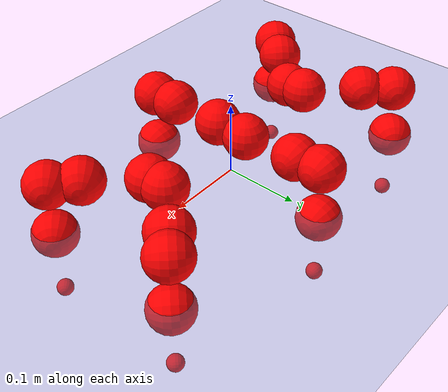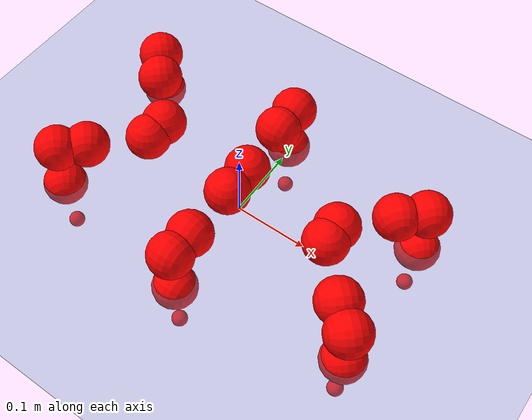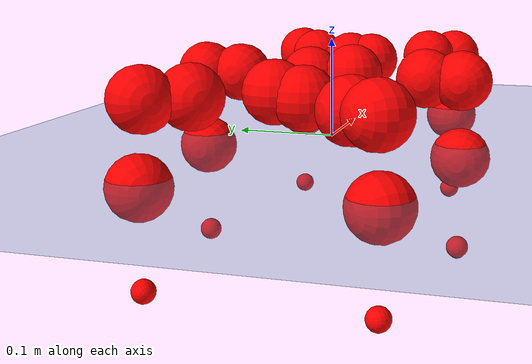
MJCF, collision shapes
<mujoco model="Golem">
  <compiler angle="radian" assetdir="assets" balanceinertia="true" inertiafromgeom="false"/>

  <option timestep="0.005" density="1.2" viscosity="2e-05"/>

  <size nkey="1"/>

  <visual>
    <quality shadowsize="8192"/>
    <map shadowclip="0.5"/>
  </visual>

  <default>
    <default class="/">
      <joint armature="0.01" damping="0.01" frictionloss="0.01"/>
      <geom contype="0" conaffinity="0" group="1" solref="-1000 -80"/>
      <site size="0.01 0.005 0.005" group="5"/>
      <general forcelimited="true" biastype="affine" gainprm="25" biasprm="0 -25 -0.5"/>
      <default class="visual">
        <geom type="mesh" group="2"/>
      </default>
      <default class="collision">
        <geom group="3"/>
      </default>
      <default class="foot">
        <geom size="0.01 0 0" condim="6" group="4" priority="1" solimp="0.015 1 0.01"/>
      </default>
      <default class="reward_collision_sphere">
        <geom group="5" rgba="1 0 0 1"/>
      </default>
    </default>
  </default>

  <asset>
    <texture type="skybox" colorspace="auto" name="//unnamed_texture_0" builtin="gradient" rgb1="0.95 0.95 0.95" rgb2="0.95 0.95 0.95" width="100" height="600"/>
    <texture type="2d" colorspace="auto" name="texplane" builtin="checker" rgb1="0.345 0.575 0.748" rgb2="0.345 0.575 0.748" markrgb="1 1 1" width="512" height="512"/>
    <material name="MatPlane" class="/" texture="texplane" texuniform="true" texrepeat="2 2" specular="0.9"/>
    <mesh name="body" class="/" file="body.stl" scale="0.001 0.001 0.001"/>
    <mesh name="coxa" class="/" file="coxa.stl" scale="0.001 0.001 0.001"/>
    <mesh name="femur" class="/" file="femur.stl" scale="0.001 0.001 0.001"/>
    <mesh name="tibia" class="/" file="tibia.stl" scale="0.001 0.001 0.001"/>
    <mesh name="tarsus" class="/" file="tarsus.stl" scale="0.001 0.001 0.001"/>
  </asset>

  <worldbody>
    <geom name="floor" class="/" size="100 100 0.125" type="plane" group="0" material="MatPlane"/>
    <light name="toplight_shadow" class="/" pos="0 0 5" dir="0.0990148 0.0990148 -0.990148" type="directional" ambient="0.04 0.04 0.04" diffuse="0.55 0.55 0.55" specular="0.12 0.12 0.12"/>
    <light name="toplight_fill" class="/" pos="0 0 5" dir="0.0990148 0.0990148 -0.990148" type="directional" castshadow="false" ambient="0.04 0.04 0.04" diffuse="0.3 0.3 0.3" specular="0.08 0.08 0.08"/>
    <body name="trunk" pos="0.000137479 -6.12944e-05 7.33564e-05" quat="1 0.000450683 0.000704755 1.22001e-05">
      <inertial pos="0.00137157 -0.000592621 -0.00226681" quat="1 0.000190795 0.00013352 -7.1225e-05" mass="1.56221" diaginertia="0.0049648 6.4158e-05 0.00985855"/>
      <joint name="//unnamed_joint_0" type="free"/>
      <geom name="//unnamed_geom_1" class="/" pos="0 0 0.0638734" quat="1 0 0 0" type="mesh" rgba="0.9 0.9 0.9 1" mesh="body"/>
      <site name="imu" class="/" pos="0.123495 -0.0130146 0.102522" size="0.00745501"/>
      <camera name="track" class="/" pos="0 -0.734827 0" quat="0.707107 0.707107 0 0" mode="trackcom"/>
      <camera name="ego_camera" class="/" pos="0.113239 0 0.0998021" quat="-0.5 -0.5 0.5 0.5"/>
      <body name="coxa_RR" pos="-0.155983 -0.0301123 0.0604757" quat="0.382152 6.88364e-06 0.00063353 -0.924099">
        <inertial pos="-0.000105903 0.000226456 0.00298617" quat="0.999904 -0.00735161 -0.00340272 0.0112097" mass="0.0860143" diaginertia="0.00518482 6.94411e-05 0.0102692"/>
        <joint name="coxa_joint_RR" class="/" pos="0 0 0" axis="-0.000967307 0.00506277 -0.999987" range="-3.19462 3.09213" armature="0.00750974" damping="0.012218" frictionloss="0.00843897"/>
        <geom name="//unnamed_geom_2" class="/" type="mesh" rgba="0.2 0.2 0.2 1" mesh="coxa"/>
        <geom name="//unnamed_geom_3" class="reward_collision_sphere" size="0.02982" pos="-0.0261321 0 0"/>
        <body name="femur_RR" pos="0.0532197 0.00115048 0.00103225" quat="0.500211 -0.500202 0.499863 0.499724">
          <inertial pos="0.000733489 -0.000311569 0.000241326" quat="0.999989 -0.00305615 -0.00283768 0.00213544" mass="0.0824745" diaginertia="0.0051659 6.91854e-05 0.00982759"/>
          <joint name="femur_joint_RR" class="/" pos="0 0 0" axis="0.0108183 -0.00397731 -0.999934" range="-3.09239 3.13129" armature="0.00646013" damping="0" frictionloss="0.00715237"/>
          <geom name="//unnamed_geom_4" class="/" type="mesh" rgba="0.9 0.9 0.9 1" mesh="femur"/>
          <geom name="//unnamed_geom_5" class="reward_collision_sphere" size="0.02982"/>
          <body name="tibia_RR" pos="-0.00222949 -0.0377728 0.00172145" quat="-0.000145822 0.999999 -0.000301836 -0.00134902">
            <inertial pos="0.00287398 0.00269475 -0.00121073" quat="0.999988 -0.000288313 0.00125212 -0.00475292" mass="0.0855295" diaginertia="0.00494337 6.6618e-05 0.00955484"/>
            <joint name="tibia_joint_RR" class="/" pos="0 0 0" axis="-0.000263706 -0.0113257 0.999936" stiffness="0.000149097" range="-3.09526 3.12915" armature="0.00650299" damping="0" frictionloss="0.00775868"/>
            <geom name="//unnamed_geom_6" class="/" type="mesh" rgba="0.2 0.2 0.2 1" mesh="tibia"/>
            <geom name="//unnamed_geom_7" class="reward_collision_sphere" size="0.02982"/>
            <body name="tarsus_RR" pos="0.0740562 0.0019866 -0.00234371" quat="1 -0.000461555 1.04205e-05 0.000616657">
              <inertial pos="0.0499578 0.00116769 -0.000903869" quat="0.499968 0.500333 0.499822 0.499876" mass="0.0867478" diaginertia="0.00530944 6.68103e-05 0.0105555"/>
              <joint name="tarsus_joint_RR" class="/" pos="0 0 0" axis="0.0121509 0.00509324 0.999913" stiffness="0.00374633" range="-3.18186 3.15419" armature="0.00741808" damping="0" frictionloss="0.00724213"/>
              <geom name="//unnamed_geom_8" class="/" type="mesh" rgba="0.9 0.9 0.9 1" mesh="tarsus"/>
              <geom name="foot_1" class="foot" size="0.0076307" pos="0.0975597 0 0" quat="0 -0.707107 0 0.707107"/>
              <geom name="//unnamed_geom_10" class="reward_collision_sphere" size="0.02982"/>
              <geom name="//unnamed_geom_11" class="reward_collision_sphere" size="0.0111825" pos="0.0936398 0 0"/>
              <site name="foot_1" class="foot" pos="0.0975597 0 0" quat="0 -0.707107 0 0.707107" size="0.00745501"/>
            </body>
          </body>
        </body>
      </body>
      <body name="coxa_RM" pos="-0.0018765 -0.0485371 0.0655211" quat="0.707765 0.000795705 -5.86421e-06 -0.706448">
        <inertial pos="0.00237272 -0.00240411 0.00227441" quat="0.999988 -0.000415079 0.000324638 -0.00489379" mass="0.0797203" diaginertia="0.00484964 6.70078e-05 0.009841"/>
        <joint name="coxa_joint_RM" class="/" pos="0 0 0" axis="-0.00792856 0.00988236 -0.99992" range="-3.14052 3.19262" armature="0.00811663" damping="0.00198893" frictionloss="0.00640584"/>
        <geom name="//unnamed_geom_12" class="/" type="mesh" rgba="0.2 0.2 0.2 1" mesh="coxa"/>
        <geom name="//unnamed_geom_13" class="reward_collision_sphere" size="0.02982" pos="-0.0261321 0 0"/>
        <body name="femur_RM" pos="0.0486758 -0.000584832 -0.00195484" quat="0.499861 -0.500031 0.500048 0.50006">
          <inertial pos="0.00275192 -5.87565e-05 -0.000640541" quat="1 -0.000205142 -9.16265e-05 -5.52288e-05" mass="0.0878819" diaginertia="0.00505751 6.77155e-05 0.0100063"/>
          <joint name="femur_joint_RM" class="/" pos="0 0 0" axis="0.00538861 0.00314922 -0.999981" range="-3.18568 3.14338" armature="0.00768217" damping="0.0201937" frictionloss="0.00849626"/>
          <geom name="//unnamed_geom_14" class="/" type="mesh" rgba="0.9 0.9 0.9 1" mesh="femur"/>
          <geom name="//unnamed_geom_15" class="reward_collision_sphere" size="0.02982"/>
          <body name="tibia_RM" pos="0.000804456 -0.0362415 -0.000971236" quat="-6.77193e-05 1 0.000474665 -0.000305465">
            <inertial pos="0.00164889 -0.00297569 -0.00254509" quat="0.999913 -0.00696891 0.0110677 0.00182413" mass="0.0835555" diaginertia="0.00516104 6.62695e-05 0.0102262"/>
            <joint name="tibia_joint_RM" class="/" pos="0 0 0" axis="0.00159798 -0.000406674 0.999999" range="-3.15008 3.10233" armature="0.00826644" damping="0.0157136" frictionloss="0.00815198"/>
            <geom name="//unnamed_geom_16" class="/" type="mesh" rgba="0.2 0.2 0.2 1" mesh="tibia"/>
            <geom name="//unnamed_geom_17" class="reward_collision_sphere" size="0.02982"/>
            <body name="tarsus_RM" pos="0.0777036 0.000433271 -0.000884902" quat="1 0.000171649 3.27756e-05 0.0002149">
              <inertial pos="0.055391 -0.00072069 0.00100873" quat="0.510047 0.50026 0.490286 0.499211" mass="0.0824356" diaginertia="0.00515325 6.84749e-05 0.00955812"/>
              <joint name="tarsus_joint_RM" class="/" pos="0 0 0" axis="0.000976869 -0.000608186 0.999999" range="-3.09571 3.18429" armature="0.00812097" damping="0.00878896" frictionloss="0.00721569"/>
              <geom name="//unnamed_geom_18" class="/" type="mesh" rgba="0.9 0.9 0.9 1" mesh="tarsus"/>
              <geom name="foot_2" class="foot" size="0.00813269" pos="0.0975597 0 0" quat="0 -0.707107 0 0.707107"/>
              <geom name="//unnamed_geom_20" class="reward_collision_sphere" size="0.02982"/>
              <geom name="//unnamed_geom_21" class="reward_collision_sphere" size="0.0111825" pos="0.0936398 0 0"/>
              <site name="foot_2" class="foot" pos="0.0975597 0 0" quat="0 -0.707107 0 0.707107" size="0.00745501"/>
            </body>
          </body>
        </body>
      </body>
      <body name="coxa_RF" pos="0.152951 -0.0291902 0.0641739" quat="0.923837 -6.06288e-05 -1.25614e-05 -0.382786">
        <inertial pos="-0.00264777 -0.00152738 0.00316394" quat="0.999901 0.0109703 -0.00882204 -0.000548241" mass="0.0824887" diaginertia="0.0052131 6.69189e-05 0.00995992"/>
        <joint name="coxa_joint_RF" class="/" pos="0 0 0" axis="-0.0021032 -0.00431127 -0.999988" range="-3.17665 3.18533" armature="0.00645154" damping="0.012253" frictionloss="0.00783398"/>
        <geom name="//unnamed_geom_22" class="/" type="mesh" rgba="0.2 0.2 0.2 1" mesh="coxa"/>
        <geom name="//unnamed_geom_23" class="reward_collision_sphere" size="0.02982" pos="-0.0261321 0 0"/>
        <body name="femur_RF" pos="0.0529983 -0.00245303 0.000567493" quat="0.500307 -0.499697 0.50078 0.499214">
          <inertial pos="-0.000625284 -0.00295081 0.00240604" quat="0.99994 -0.00756504 0.00633283 0.0046753" mass="0.0821829" diaginertia="0.00481291 6.47358e-05 0.00986753"/>
          <joint name="femur_joint_RF" class="/" pos="0 0 0" axis="0.000900937 0.00586373 -0.999982" range="-3.08371 3.13817" armature="0.00734846" damping="0" frictionloss="0.00656068"/>
          <geom name="//unnamed_geom_24" class="/" type="mesh" rgba="0.9 0.9 0.9 1" mesh="femur"/>
          <geom name="//unnamed_geom_25" class="reward_collision_sphere" size="0.02982"/>
          <body name="tibia_RF" pos="0.00171178 -0.0394961 0.00225503" quat="0.00038747 0.999999 -0.00140169 -0.000162471">
            <inertial pos="0.000457015 0.00278386 -0.00153147" quat="0.999902 0.00321705 -0.00477238 0.0127247" mass="0.0840216" diaginertia="0.00509169 6.67018e-05 0.00986646"/>
            <joint name="tibia_joint_RF" class="/" pos="0 0 0" axis="0.00899197 0.00813575 0.999926" stiffness="0.00470632" range="-3.13507 3.12847" armature="0.00699954" damping="0.0010093" frictionloss="0.00741343"/>
            <geom name="//unnamed_geom_26" class="/" type="mesh" rgba="0.2 0.2 0.2 1" mesh="tibia"/>
            <geom name="//unnamed_geom_27" class="reward_collision_sphere" size="0.02982"/>
            <body name="tarsus_RF" pos="0.0744481 1.62475e-05 -0.00217875" quat="0.999999 -0.000539665 0.00104358 0.000394458">
              <inertial pos="0.0500813 0.000877562 0.0017819" quat="0.501602 0.488841 0.508385 0.500974" mass="0.0779567" diaginertia="0.00501726 6.57666e-05 0.00952758"/>
              <joint name="tarsus_joint_RF" class="/" pos="0 0 0" axis="-0.010039 0.00602409 0.999931" range="-3.09659 3.14262" armature="0.00737774" damping="0.00852098" frictionloss="0.00849498"/>
              <geom name="//unnamed_geom_28" class="/" type="mesh" rgba="0.9 0.9 0.9 1" mesh="tarsus"/>
              <geom name="foot_3" class="foot" size="0.00760442" pos="0.0975597 0 0" quat="0 -0.707107 0 0.707107"/>
              <geom name="//unnamed_geom_30" class="reward_collision_sphere" size="0.02982"/>
              <geom name="//unnamed_geom_31" class="reward_collision_sphere" size="0.0111825" pos="0.0936398 0 0"/>
              <site name="foot_3" class="foot" pos="0.0975597 0 0" quat="0 -0.707107 0 0.707107" size="0.00745501"/>
            </body>
          </body>
        </body>
      </body>
      <body name="coxa_LR" pos="-0.152461 0.0348491 0.0644086" quat="0.38199 -0.00100454 0.000400597 0.924166">
        <inertial pos="0.00270269 -0.000610326 -0.00243864" quat="0.999902 -0.0132109 -0.00248958 0.00387731" mass="0.0839327" diaginertia="0.00498226 6.77657e-05 0.010022"/>
        <joint name="coxa_joint_LR" class="/" pos="0 0 0" axis="0.00772217 0.00482716 -0.999959" range="-3.13253 3.1173" armature="0.00683005" damping="0.00290699" frictionloss="0.00734081"/>
        <geom name="//unnamed_geom_32" class="/" type="mesh" rgba="0.2 0.2 0.2 1" mesh="coxa"/>
        <geom name="//unnamed_geom_33" class="reward_collision_sphere" size="0.02982" pos="-0.0261321 0 0"/>
        <body name="femur_LR" pos="0.0519388 -0.00342795 0.0012358" quat="0.500806 -0.49983 0.500243 0.49912">
          <inertial pos="0.00122271 0.000486893 -0.00131419" quat="0.999999 0.000611721 -0.00064648 0.000939531" mass="0.0848067" diaginertia="0.00508528 6.80169e-05 0.0102969"/>
          <joint name="femur_joint_LR" class="/" pos="0 0 0" axis="-0.00299171 0.0023887 0.999993" range="-3.09556 3.17122" armature="0.00794268" damping="0" frictionloss="0.00814816"/>
          <geom name="//unnamed_geom_34" class="/" type="mesh" rgba="0.9 0.9 0.9 1" mesh="femur"/>
          <geom name="//unnamed_geom_35" class="reward_collision_sphere" size="0.02982"/>
          <body name="tibia_LR" pos="-0.000353018 -0.0424829 -0.00548317" quat="-0.000193986 1 -0.000239683 0.000355388">
            <inertial pos="0.00125503 -0.00312943 0.00325073" quat="0.999998 -0.00140949 0.000961637 -0.00041182" mass="0.0809109" diaginertia="0.00505553 6.97859e-05 0.00995149"/>
            <joint name="tibia_joint_LR" class="/" pos="0 0 0" axis="-0.00694668 -0.000176343 -0.999976" range="-3.12767 3.08779" armature="0.00665866" damping="0.0114413" frictionloss="0.00656446"/>
            <geom name="//unnamed_geom_36" class="/" type="mesh" rgba="0.2 0.2 0.2 1" mesh="tibia"/>
            <geom name="//unnamed_geom_37" class="reward_collision_sphere" size="0.02982"/>
            <body name="tarsus_LR" pos="0.075956 0.00430391 0.00085154" quat="1 2.08822e-05 -0.000100611 -2.57963e-05">
              <inertial pos="0.0515976 -0.0013503 0.000208553" quat="0.501139 0.498792 0.500639 0.499427" mass="0.0829885" diaginertia="0.00499296 6.54335e-05 0.00986982"/>
              <joint name="tarsus_joint_LR" class="/" pos="0 0 0" axis="0.0065441 0.001077 -0.999978" range="-3.09303 3.13959" armature="0.00761505" damping="0.00408091" frictionloss="0.00711547"/>
              <geom name="//unnamed_geom_38" class="/" type="mesh" rgba="0.9 0.9 0.9 1" mesh="tarsus"/>
              <geom name="foot_4" class="foot" size="0.00677185" pos="0.0975597 0 0" quat="0.707107 0 -0.707107 0"/>
              <geom name="//unnamed_geom_40" class="reward_collision_sphere" size="0.02982"/>
              <geom name="//unnamed_geom_41" class="reward_collision_sphere" size="0.0111825" pos="0.0936398 0 0"/>
              <site name="foot_4" class="foot" pos="0.0975597 0 0" quat="0.707107 0 -0.707107 0" size="0.00745501"/>
            </body>
          </body>
        </body>
      </body>
      <body name="coxa_LM" pos="-0.00345779 0.0476923 0.0622372" quat="0.706594 -0.000153782 0.000417681 0.707619">
        <inertial pos="-0.00118789 0.000160196 0.00295323" quat="0.999986 0.00131633 -0.000666222 0.00513485" mass="0.0832764" diaginertia="0.00523568 6.8143e-05 0.0103493"/>
        <joint name="coxa_joint_LM" class="/" pos="0 0 0" axis="-0.00290994 -0.000421812 -0.999996" stiffness="0.00599528" range="-3.19424 3.14656" armature="0.0063217" damping="0.00267465" frictionloss="0.00849291"/>
        <geom name="//unnamed_geom_42" class="/" type="mesh" rgba="0.2 0.2 0.2 1" mesh="coxa"/>
        <geom name="//unnamed_geom_43" class="reward_collision_sphere" size="0.02982" pos="-0.0261321 0 0"/>
        <body name="femur_LM" pos="0.0479966 0.00367711 0.00130869" quat="0.500082 -0.500275 0.499862 0.49978">
          <inertial pos="-0.000617666 -0.00293843 -0.000371986" quat="0.999914 -0.00434999 0.0111357 0.00547997" mass="0.07793" diaginertia="0.00484673 6.51382e-05 0.00959948"/>
          <joint name="femur_joint_LM" class="/" pos="0 0 0" axis="0.0096809 0.0087738 0.999915" stiffness="0.000351592" range="-3.13844 3.15999" armature="0.0065551" damping="0.0100939" frictionloss="0.00847085"/>
          <geom name="//unnamed_geom_44" class="/" type="mesh" rgba="0.9 0.9 0.9 1" mesh="femur"/>
          <geom name="//unnamed_geom_45" class="reward_collision_sphere" size="0.02982"/>
          <body name="tibia_LM" pos="-0.000989937 -0.0380634 0.000734983" quat="-0.000330642 1 -3.57554e-05 -9.12679e-06">
            <inertial pos="-0.0020555 0.00101361 -0.000987213" quat="1 0.000422831 -0.00036146 6.5612e-05" mass="0.0853039" diaginertia="0.0048184 6.65974e-05 0.00971994"/>
            <joint name="tibia_joint_LM" class="/" pos="0 0 0" axis="0.0018636 -0.00160741 -0.999997" range="-3.08359 3.13473" armature="0.00724898" damping="0" frictionloss="0.00651291"/>
            <geom name="//unnamed_geom_46" class="/" type="mesh" rgba="0.2 0.2 0.2 1" mesh="tibia"/>
            <geom name="//unnamed_geom_47" class="reward_collision_sphere" size="0.02982"/>
            <body name="tarsus_LM" pos="0.0799411 -0.000506231 -0.00344342" quat="1 -0.000196278 -0.000394612 -0.000258688">
              <inertial pos="0.0501785 -0.000543614 -0.000214005" quat="0.500304 0.503729 0.499731 0.496208" mass="0.0792802" diaginertia="0.00490108 6.61954e-05 0.010143"/>
              <joint name="tarsus_joint_LM" class="/" pos="0 0 0" axis="0.00858065 -0.00924987 -0.99992" range="-3.12851 3.08217" armature="0.00746191" damping="0.0118405" frictionloss="0.00643242"/>
              <geom name="//unnamed_geom_48" class="/" type="mesh" rgba="0.9 0.9 0.9 1" mesh="tarsus"/>
              <geom name="foot_5" class="foot" size="0.00726891" pos="0.0975597 0 0" quat="0.707107 0 -0.707107 0"/>
              <geom name="//unnamed_geom_50" class="reward_collision_sphere" size="0.02982"/>
              <geom name="//unnamed_geom_51" class="reward_collision_sphere" size="0.0111825" pos="0.0936398 0 0"/>
              <site name="foot_5" class="foot" pos="0.0975597 0 0" quat="0.707107 0 -0.707107 0" size="0.00745501"/>
            </body>
          </body>
        </body>
      </body>
      <body name="coxa_LF" pos="0.152892 0.0324977 0.0648274" quat="0.923955 0.000892471 0.00068555 0.3825">
        <inertial pos="0.0013847 -0.00268598 0.000751136" quat="1 0.000299765 0.000371431 -0.000134564" mass="0.0799861" diaginertia="0.00485833 6.24688e-05 0.00954429"/>
        <joint name="coxa_joint_LF" class="/" pos="0 0 0" axis="0.00376563 -0.00453155 -0.999983" range="-3.19539 3.11233" armature="0.00765781" damping="0" frictionloss="0.008332"/>
        <geom name="//unnamed_geom_52" class="/" type="mesh" rgba="0.2 0.2 0.2 1" mesh="coxa"/>
        <geom name="//unnamed_geom_53" class="reward_collision_sphere" size="0.02982" pos="-0.0261321 0 0"/>
        <body name="femur_LF" pos="0.0485469 0.00291672 -0.00205433" quat="0.500926 -0.499381 0.500486 0.499206">
          <inertial pos="6.90525e-05 -0.000665672 0.000956032" quat="0.999961 0.00706172 0.00285544 -0.00457686" mass="0.0821474" diaginertia="0.00493411 6.45207e-05 0.00950775"/>
          <joint name="femur_joint_LF" class="/" pos="0 0 0" axis="-0.0071589 -0.0133221 0.999886" range="-3.15188 3.09804" armature="0.00782518" damping="0.0133609" frictionloss="0.00686148"/>
          <geom name="//unnamed_geom_54" class="/" type="mesh" rgba="0.9 0.9 0.9 1" mesh="femur"/>
          <geom name="//unnamed_geom_55" class="reward_collision_sphere" size="0.02982"/>
          <body name="tibia_LF" pos="0.000317293 -0.0386455 -0.00137841" quat="-1.11078e-05 1 1.58508e-05 2.49258e-05">
            <inertial pos="-0.000255283 0.000636709 -0.000455902" quat="0.999935 0.00208973 0.00801827 0.00785327" mass="0.0859088" diaginertia="0.00497886 6.51655e-05 0.00962443"/>
            <joint name="tibia_joint_LF" class="/" pos="0 0 0" axis="0.00588446 -0.0135133 -0.999891" stiffness="0.00785896" range="-3.17824 3.12327" armature="0.00840023" damping="0.0124433" frictionloss="0.00641826"/>
            <geom name="//unnamed_geom_56" class="/" type="mesh" rgba="0.2 0.2 0.2 1" mesh="tibia"/>
            <geom name="//unnamed_geom_57" class="reward_collision_sphere" size="0.02982"/>
            <body name="tarsus_LF" pos="0.0787403 0.00101694 0.00171761" quat="1 -7.71828e-05 7.52507e-06 1.49276e-05">
              <inertial pos="0.0509625 0.000353709 0.00198365" quat="0.499362 0.50073 0.499958 0.499949" mass="0.0817852" diaginertia="0.00496961 6.5603e-05 0.00958215"/>
              <joint name="tarsus_joint_LF" class="/" pos="0 0 0" axis="-0.00533882 0.0143454 -0.999883" stiffness="0.0264128" range="-3.13857 3.18998" armature="0.00744229" damping="0.0235497" frictionloss="0.00708298"/>
              <geom name="//unnamed_geom_58" class="/" type="mesh" rgba="0.9 0.9 0.9 1" mesh="tarsus"/>
              <geom name="foot_6" class="foot" size="0.00724517" pos="0.0975597 0 0" quat="0.707107 0 -0.707107 0"/>
              <geom name="//unnamed_geom_60" class="reward_collision_sphere" size="0.02982"/>
              <geom name="//unnamed_geom_61" class="reward_collision_sphere" size="0.0111825" pos="0.0936398 0 0"/>
              <site name="foot_6" class="foot" pos="0.0975597 0 0" quat="0.707107 0 -0.707107 0" size="0.00745501"/>
            </body>
          </body>
        </body>
      </body>
    </body>
  </worldbody>

  <contact>
    <pair class="/" geom1="floor" geom2="foot_1" name="//unnamed_contact_0"/>
    <pair class="/" geom1="floor" geom2="foot_2" name="//unnamed_contact_1"/>
    <pair class="/" geom1="floor" geom2="foot_3" name="//unnamed_contact_2"/>
    <pair class="/" geom1="floor" geom2="foot_4" name="//unnamed_contact_3"/>
    <pair class="/" geom1="floor" geom2="foot_5" name="//unnamed_contact_4"/>
    <pair class="/" geom1="floor" geom2="foot_6" name="//unnamed_contact_5"/>
  </contact>

  <actuator>
    <general name="coxa_joint_RR" class="/" joint="coxa_joint_RR" forcerange="-6.01836 6.01836" gainprm="17.5496" biasprm="0 -17.5496 -0.364145"/>
    <general name="femur_joint_RR" class="/" joint="femur_joint_RR" forcerange="-5.81928 5.81928" gainprm="17.5496" biasprm="0 -17.5496 -0.364145"/>
    <general name="tibia_joint_RR" class="/" joint="tibia_joint_RR" forcerange="-5.42667 5.42667" gainprm="17.5496" biasprm="0 -17.5496 -0.364145"/>
    <general name="tarsus_joint_RR" class="/" joint="tarsus_joint_RR" forcerange="-5.34086 5.34086" gainprm="17.5496" biasprm="0 -17.5496 -0.364145"/>
    <general name="coxa_joint_RM" class="/" joint="coxa_joint_RM" forcerange="-6.01811 6.01811" gainprm="17.5496" biasprm="0 -17.5496 -0.364145"/>
    <general name="femur_joint_RM" class="/" joint="femur_joint_RM" forcerange="-5.99514 5.99514" gainprm="17.5496" biasprm="0 -17.5496 -0.364145"/>
    <general name="tibia_joint_RM" class="/" joint="tibia_joint_RM" forcerange="-5.04112 5.04112" gainprm="17.5496" biasprm="0 -17.5496 -0.364145"/>
    <general name="tarsus_joint_RM" class="/" joint="tarsus_joint_RM" forcerange="-5.83152 5.83152" gainprm="17.5496" biasprm="0 -17.5496 -0.364145"/>
    <general name="coxa_joint_RF" class="/" joint="coxa_joint_RF" forcerange="-5.93763 5.93763" gainprm="17.5496" biasprm="0 -17.5496 -0.364145"/>
    <general name="femur_joint_RF" class="/" joint="femur_joint_RF" forcerange="-4.95131 4.95131" gainprm="17.5496" biasprm="0 -17.5496 -0.364145"/>
    <general name="tibia_joint_RF" class="/" joint="tibia_joint_RF" forcerange="-5.08909 5.08909" gainprm="17.5496" biasprm="0 -17.5496 -0.364145"/>
    <general name="tarsus_joint_RF" class="/" joint="tarsus_joint_RF" forcerange="-5.29411 5.29411" gainprm="17.5496" biasprm="0 -17.5496 -0.364145"/>
    <general name="coxa_joint_LR" class="/" joint="coxa_joint_LR" forcerange="-5.89917 5.89917" gainprm="17.5496" biasprm="0 -17.5496 -0.364145"/>
    <general name="femur_joint_LR" class="/" joint="femur_joint_LR" forcerange="-4.87128 4.87128" gainprm="17.5496" biasprm="0 -17.5496 -0.364145"/>
    <general name="tibia_joint_LR" class="/" joint="tibia_joint_LR" forcerange="-5.06519 5.06519" gainprm="17.5496" biasprm="0 -17.5496 -0.364145"/>
    <general name="tarsus_joint_LR" class="/" joint="tarsus_joint_LR" forcerange="-5.65204 5.65204" gainprm="17.5496" biasprm="0 -17.5496 -0.364145"/>
    <general name="coxa_joint_LM" class="/" joint="coxa_joint_LM" forcerange="-5.39843 5.39843" gainprm="17.5496" biasprm="0 -17.5496 -0.364145"/>
    <general name="femur_joint_LM" class="/" joint="femur_joint_LM" forcerange="-5.43594 5.43594" gainprm="17.5496" biasprm="0 -17.5496 -0.364145"/>
    <general name="tibia_joint_LM" class="/" joint="tibia_joint_LM" forcerange="-5.04574 5.04574" gainprm="17.5496" biasprm="0 -17.5496 -0.364145"/>
    <general name="tarsus_joint_LM" class="/" joint="tarsus_joint_LM" forcerange="-5.46594 5.46594" gainprm="17.5496" biasprm="0 -17.5496 -0.364145"/>
    <general name="coxa_joint_LF" class="/" joint="coxa_joint_LF" forcerange="-5.99088 5.99088" gainprm="17.5496" biasprm="0 -17.5496 -0.364145"/>
    <general name="femur_joint_LF" class="/" joint="femur_joint_LF" forcerange="-5.97631 5.97631" gainprm="17.5496" biasprm="0 -17.5496 -0.364145"/>
    <general name="tibia_joint_LF" class="/" joint="tibia_joint_LF" forcerange="-5.37207 5.37207" gainprm="17.5496" biasprm="0 -17.5496 -0.364145"/>
    <general name="tarsus_joint_LF" class="/" joint="tarsus_joint_LF" forcerange="-5.3517 5.3517" gainprm="17.5496" biasprm="0 -17.5496 -0.364145"/>
  </actuator>

  <sensor>
    <gyro site="imu" name="imu_angular_velocity"/>
    <velocimeter site="imu" name="imu_linear_velocity"/>
    <framelinvel objtype="site" objname="foot_1" name="foot_1_global_linear_velocity"/>
    <framelinvel objtype="site" objname="foot_2" name="foot_2_global_linear_velocity"/>
    <framelinvel objtype="site" objname="foot_3" name="foot_3_global_linear_velocity"/>
    <framelinvel objtype="site" objname="foot_4" name="foot_4_global_linear_velocity"/>
    <framelinvel objtype="site" objname="foot_5" name="foot_5_global_linear_velocity"/>
    <framelinvel objtype="site" objname="foot_6" name="foot_6_global_linear_velocity"/>
  </sensor>

  <keyframe>
    <key name="home" qpos="0 0 0.1457 1 0 0 0 0 0 0 0 0 0 0 0 0 0 0 0 0 0 0 0 0 0 0 0 0 0 0 0"/>
  </keyframe>
</mujoco>
